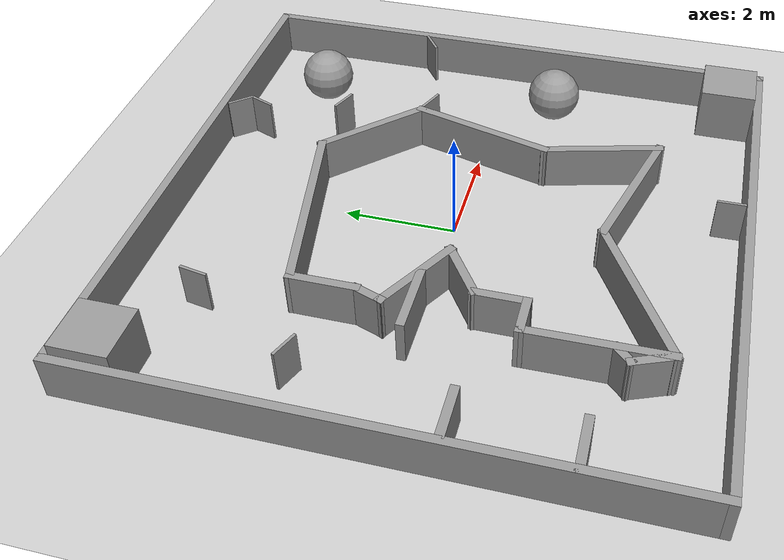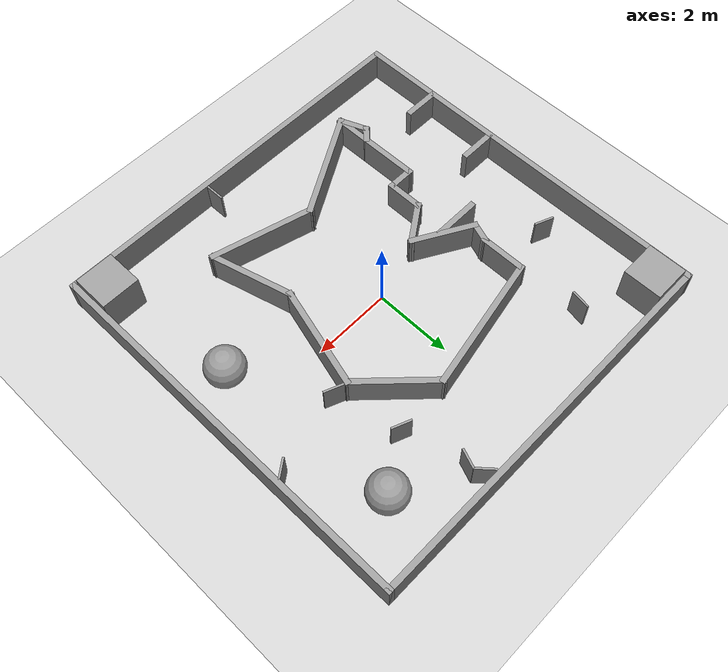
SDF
<sdf version="1.6">
 <world name="default">
  <light name="sun" type="directional">
   <pose>0 0 10 0 -0 0</pose>
   <diffuse>0.8 0.8 0.8 1</diffuse>
   <specular>0.2 0.2 0.2 1</specular>
   <attenuation>
    <range>1000</range>
    <constant>0.9</constant>
    <linear>0.01</linear>
    <quadratic>0.001</quadratic>
   </attenuation>
   <direction>-0.5 0.1 -0.9</direction>
  </light>
  <model name="ground_plane">
   <static>1</static>
   <link name="link">
    <collision name="collision">
     <geometry><plane><normal>0 0 1</normal><size>100 100</size></plane></geometry>
     <surface><friction><ode><mu>100</mu><mu2>50</mu2></ode></friction></surface>
    </collision>
    <visual name="visual">
     <cast_shadows>0</cast_shadows>
     <geometry><plane><normal>0 0 1</normal><size>100 100</size></plane></geometry>
     <material>
      <script><uri>file://media/materials/scripts/gazebo.material</uri><name>Gazebo/Grey</name></script>
     </material>
    </visual>
   </link>
  </model>
  <gravity>0 0 -9.8</gravity>
  <magnetic_field>6e-06 2.3e-05 -4.2e-05</magnetic_field>
  <atmosphere type="adiabatic"/>
  <physics name="default_physics" default="0" type="ode">
   <max_step_size>0.001</max_step_size>
   <real_time_factor>1</real_time_factor>
   <real_time_update_rate>1000</real_time_update_rate>
  </physics>
  <scene><ambient>0.4 0.4 0.4 1</ambient><background>0.7 0.7 0.7 1</background><shadows>1</shadows></scene>
  <audio><device>default</device></audio>
  <spherical_coordinates>
   <surface_model>EARTH_WGS84</surface_model>
   <latitude_deg>0</latitude_deg>
   <longitude_deg>0</longitude_deg>
   <elevation>0</elevation>
   <heading_deg>0</heading_deg>
  </spherical_coordinates>
  <model name="rsp_maze">
   <link name="Wall_1">
    <collision name="Wall_1_Collision">
     <geometry><box><size>10.15 0.15 0.8</size></box></geometry>
     <pose>0 0 0.4 0 -0 0</pose>
    </collision>
    <visual name="Wall_1_Visual">
     <pose>0 0 0.4 0 -0 0</pose>
     <geometry><box><size>10.15 0.15 0.8</size></box></geometry>
     <material>
      <script><uri>file://media/materials/scripts/gazebo.material</uri><name>Gazebo/Grey</name></script>
      <ambient>1 1 1 1</ambient>
     </material>
     <meta><layer>0</layer></meta>
    </visual>
    <pose>-5 0 0 0 -0 1.5708</pose>
   </link>
   <link name="Wall_10">
    <collision name="Wall_10_Collision">
     <geometry><box><size>1 0.15 0.8</size></box></geometry>
     <pose>0 0 0.4 0 -0 0</pose>
    </collision>
    <visual name="Wall_10_Visual">
     <pose>0 0 0.4 0 -0 0</pose>
     <geometry><box><size>1 0.15 0.8</size></box></geometry>
     <material>
      <script><uri>file://media/materials/scripts/gazebo.material</uri><name>Gazebo/Grey</name></script>
      <ambient>1 1 1 1</ambient>
     </material>
     <meta><layer>0</layer></meta>
    </visual>
    <pose>-4.573 -2.971 0 0 -0 0</pose>
   </link>
   <link name="Wall_12">
    <collision name="Wall_12_Collision">
     <geometry><box><size>2.5 0.15 0.8</size></box></geometry>
     <pose>0 0 0.4 0 -0 0</pose>
    </collision>
    <visual name="Wall_12_Visual">
     <pose>0 0 0.4 0 -0 0</pose>
     <geometry><box><size>2.5 0.15 0.8</size></box></geometry>
     <material>
      <script><uri>file://media/materials/scripts/gazebo.material</uri><name>Gazebo/Grey</name></script>
      <ambient>1 1 1 1</ambient>
     </material>
     <meta><layer>0</layer></meta>
    </visual>
    <pose>-2.722 -2.876 0 0 -0 1.58101</pose>
   </link>
   <link name="Wall_13">
    <collision name="Wall_13_Collision">
     <geometry><box><size>0.75 0.15 0.8</size></box></geometry>
     <pose>0 0 0.4 0 -0 0</pose>
    </collision>
    <visual name="Wall_13_Visual">
     <pose>0 0 0.4 0 -0 0</pose>
     <geometry><box><size>0.75 0.15 0.8</size></box></geometry>
     <material>
      <script><uri>file://media/materials/scripts/gazebo.material</uri><name>Gazebo/Grey</name></script>
      <ambient>1 1 1 1</ambient>
     </material>
     <meta><layer>0</layer></meta>
    </visual>
    <pose>-2.434 -1.701 0 0 -0 0</pose>
   </link>
   <link name="Wall_14">
    <collision name="Wall_14_Collision">
     <geometry><box><size>1 0.15 0.8</size></box></geometry>
     <pose>0 0 0.4 0 -0 0</pose>
    </collision>
    <visual name="Wall_14_Visual">
     <pose>0 0 0.4 0 -0 0</pose>
     <geometry><box><size>1 0.15 0.8</size></box></geometry>
     <material>
      <script><uri>file://media/materials/scripts/gazebo.material</uri><name>Gazebo/Grey</name></script>
      <ambient>1 1 1 1</ambient>
     </material>
     <meta><layer>0</layer></meta>
    </visual>
    <pose>-2.134 -1.276 0 0 -0 1.5708</pose>
   </link>
   <link name="Wall_15">
    <collision name="Wall_15_Collision">
     <geometry><box><size>1.18919 0.15 0.8</size></box></geometry>
     <pose>0 0 0.4 0 -0 0</pose>
    </collision>
    <visual name="Wall_15_Visual">
     <pose>0 0 0.4 0 -0 0</pose>
     <geometry><box><size>1.18919 0.15 0.8</size></box></geometry>
     <material>
      <script><uri>file://media/materials/scripts/gazebo.material</uri><name>Gazebo/Grey</name></script>
      <ambient>1 1 1 1</ambient>
     </material>
     <meta><layer>0</layer></meta>
    </visual>
    <pose>-1.707 -0.555 0 0 -0 0.606153</pose>
   </link>
   <link name="Wall_16">
    <collision name="Wall_16_Collision">
     <geometry><box><size>1.73122 0.15 0.8</size></box></geometry>
     <pose>0 0 0.4 0 -0 0</pose>
    </collision>
    <visual name="Wall_16_Visual">
     <pose>0 0 0.4 0 -0 0</pose>
     <geometry><box><size>1.73122 0.15 0.8</size></box></geometry>
     <material>
      <script><uri>file://media/materials/scripts/gazebo.material</uri><name>Gazebo/Grey</name></script>
      <ambient>1 1 1 1</ambient>
     </material>
     <meta><layer>0</layer></meta>
    </visual>
    <pose>-1.9675 0.131 0 0 -0 2.62559</pose>
   </link>
   <link name="Wall_17">
    <collision name="Wall_17_Collision">
     <geometry><box><size>0.631141 0.15 0.8</size></box></geometry>
     <pose>0 0 0.4 0 -0 0</pose>
    </collision>
    <visual name="Wall_17_Visual">
     <pose>0 0 0.4 0 -0 0</pose>
     <geometry><box><size>0.631141 0.15 0.8</size></box></geometry>
     <material>
      <script><uri>file://media/materials/scripts/gazebo.material</uri><name>Gazebo/Grey</name></script>
      <ambient>1 1 1 1</ambient>
     </material>
     <meta><layer>0</layer></meta>
    </visual>
    <pose>-2.5745 0.748 0 0 -0 1.23001</pose>
   </link>
   <link name="Wall_18">
    <collision name="Wall_18_Collision">
     <geometry><box><size>1.25 0.15 0.8</size></box></geometry>
     <pose>0 0 0.4 0 -0 0</pose>
    </collision>
    <visual name="Wall_18_Visual">
     <pose>0 0 0.4 0 -0 0</pose>
     <geometry><box><size>1.25 0.15 0.8</size></box></geometry>
     <material>
      <script><uri>file://media/materials/scripts/gazebo.material</uri><name>Gazebo/Grey</name></script>
      <ambient>1 1 1 1</ambient>
     </material>
     <meta><layer>0</layer></meta>
    </visual>
    <pose>-2.494 1.525 0 0 -0 1.5708</pose>
   </link>
   <link name="Wall_20">
    <collision name="Wall_20_Collision">
     <geometry><box><size>1.25 0.15 0.8</size></box></geometry>
     <pose>0 0 0.4 0 -0 0</pose>
    </collision>
    <visual name="Wall_20_Visual">
     <pose>0 0 0.4 0 -0 0</pose>
     <geometry><box><size>1.25 0.15 0.8</size></box></geometry>
     <material>
      <script><uri>file://media/materials/scripts/gazebo.material</uri><name>Gazebo/Grey</name></script>
      <ambient>1 1 1 1</ambient>
     </material>
     <meta><layer>0</layer></meta>
    </visual>
    <pose>-2.484 0.074 0 0 -0 3.14159</pose>
   </link>
   <link name="Wall_22">
    <collision name="Wall_22_Collision">
     <geometry><box><size>1 0.15 0.8</size></box></geometry>
     <pose>0 0 0.4 0 -0 0</pose>
    </collision>
    <visual name="Wall_22_Visual">
     <pose>0 0 0.4 0 -0 0</pose>
     <geometry><box><size>1 0.15 0.8</size></box></geometry>
     <material>
      <script><uri>file://media/materials/scripts/gazebo.material</uri><name>Gazebo/Grey</name></script>
      <ambient>1 1 1 1</ambient>
     </material>
     <meta><layer>0</layer></meta>
    </visual>
    <pose>-4.523 -1.028 0 0 -0 0</pose>
   </link>
   <link name="Wall_24">
    <collision name="Wall_24_Collision">
     <geometry><box><size>0.492019 0.15 0.8</size></box></geometry>
     <pose>0 0 0.4 0 -0 0</pose>
    </collision>
    <visual name="Wall_24_Visual">
     <pose>0 0 0.4 0 -0 0</pose>
     <geometry><box><size>0.492019 0.15 0.8</size></box></geometry>
     <material>
      <script><uri>file://media/materials/scripts/gazebo.material</uri><name>Gazebo/Grey</name></script>
      <ambient>1 1 1 1</ambient>
     </material>
     <meta><layer>0</layer></meta>
    </visual>
    <pose>-2.852 -3.287 0 0 -0 -2.33141</pose>
   </link>
   <link name="Wall_25">
    <collision name="Wall_25_Collision">
     <geometry><box><size>0.840797 0.15 0.8</size></box></geometry>
     <pose>0 0 0.4 0 -0 0</pose>
    </collision>
    <visual name="Wall_25_Visual">
     <pose>0 0 0.4 0 -0 0</pose>
     <geometry><box><size>0.840797 0.15 0.8</size></box></geometry>
     <material>
      <script><uri>file://media/materials/scripts/gazebo.material</uri><name>Gazebo/Grey</name></script>
      <ambient>1 1 1 1</ambient>
     </material>
     <meta><layer>0</layer></meta>
    </visual>
    <pose>-2.84 -3.731 0 0 -0 -1.18491</pose>
   </link>
   <link name="Wall_29">
    <collision name="Wall_29_Collision">
     <geometry><box><size>2.99985 0.15 0.8</size></box></geometry>
     <pose>0 0 0.4 0 -0 0</pose>
    </collision>
    <visual name="Wall_29_Visual">
     <pose>0 0 0.4 0 -0 0</pose>
     <geometry><box><size>2.99985 0.15 0.8</size></box></geometry>
     <material>
      <script><uri>file://media/materials/scripts/gazebo.material</uri><name>Gazebo/Grey</name></script>
      <ambient>1 1 1 1</ambient>
     </material>
     <meta><layer>0</layer></meta>
    </visual>
    <pose>-1.476 -3.3385 0 0 -0 0.523629</pose>
   </link>
   <link name="Wall_3">
    <collision name="Wall_3_Collision">
     <geometry><box><size>10.15 0.15 0.8</size></box></geometry>
     <pose>0 0 0.4 0 -0 0</pose>
    </collision>
    <visual name="Wall_3_Visual">
     <pose>0 0 0.4 0 -0 0</pose>
     <geometry><box><size>10.15 0.15 0.8</size></box></geometry>
     <material>
      <script><uri>file://media/materials/scripts/gazebo.material</uri><name>Gazebo/Grey</name></script>
      <ambient>1 1 1 1</ambient>
     </material>
     <meta><layer>0</layer></meta>
    </visual>
    <pose>0 5 0 0 -0 0</pose>
   </link>
   <link name="Wall_30">
    <collision name="Wall_30_Collision">
     <geometry><box><size>2.73804 0.15 0.8</size></box></geometry>
     <pose>0 0 0.4 0 -0 0</pose>
    </collision>
    <visual name="Wall_30_Visual">
     <pose>0 0 0.4 0 -0 0</pose>
     <geometry><box><size>2.73804 0.15 0.8</size></box></geometry>
     <material>
      <script><uri>file://media/materials/scripts/gazebo.material</uri><name>Gazebo/Grey</name></script>
      <ambient>1 1 1 1</ambient>
     </material>
     <meta><layer>0</layer></meta>
    </visual>
    <pose>1.0075 -2.9625 0 0 -0 -0.263066</pose>
   </link>
   <link name="Wall_31">
    <collision name="Wall_31_Collision">
     <geometry><box><size>2.25 0.15 0.8</size></box></geometry>
     <pose>0 0 0.4 0 -0 0</pose>
    </collision>
    <visual name="Wall_31_Visual">
     <pose>0 0 0.4 0 -0 0</pose>
     <geometry><box><size>2.25 0.15 0.8</size></box></geometry>
     <material>
      <script><uri>file://media/materials/scripts/gazebo.material</uri><name>Gazebo/Grey</name></script>
      <ambient>1 1 1 1</ambient>
     </material>
     <meta><layer>0</layer></meta>
    </visual>
    <pose>1.985 -2.2845 0 0 -0 1.83275</pose>
   </link>
   <link name="Wall_32">
    <collision name="Wall_32_Collision">
     <geometry><box><size>2.75 0.15 0.8</size></box></geometry>
     <pose>0 0 0.4 0 -0 0</pose>
    </collision>
    <visual name="Wall_32_Visual">
     <pose>0 0 0.4 0 -0 0</pose>
     <geometry><box><size>2.75 0.15 0.8</size></box></geometry>
     <material>
      <script><uri>file://media/materials/scripts/gazebo.material</uri><name>Gazebo/Grey</name></script>
      <ambient>1 1 1 1</ambient>
     </material>
     <meta><layer>0</layer></meta>
    </visual>
    <pose>2.0495 -0.0145 0 0 -0 1.30893</pose>
   </link>
   <link name="Wall_33">
    <collision name="Wall_33_Collision">
     <geometry><box><size>2.25 0.15 0.8</size></box></geometry>
     <pose>0 0 0.4 0 -0 0</pose>
    </collision>
    <visual name="Wall_33_Visual">
     <pose>0 0 0.4 0 -0 0</pose>
     <geometry><box><size>2.25 0.15 0.8</size></box></geometry>
     <material>
      <script><uri>file://media/materials/scripts/gazebo.material</uri><name>Gazebo/Grey</name></script>
      <ambient>1 1 1 1</ambient>
     </material>
     <meta><layer>0</layer></meta>
    </visual>
    <pose>1.6435 1.9835 0 0 -0 2.35619</pose>
   </link>
   <link name="Wall_34">
    <collision name="Wall_34_Collision">
     <geometry><box><size>3.60689 0.15 0.8</size></box></geometry>
     <pose>0 0 0.4 0 -0 0</pose>
    </collision>
    <visual name="Wall_34_Visual">
     <pose>0 0 0.4 0 -0 0</pose>
     <geometry><box><size>3.60689 0.15 0.8</size></box></geometry>
     <material>
      <script><uri>file://media/materials/scripts/gazebo.material</uri><name>Gazebo/Grey</name></script>
      <ambient>1 1 1 1</ambient>
     </material>
     <meta><layer>0</layer></meta>
    </visual>
    <pose>-0.7965 2.4005 0 0 -0 -2.95214</pose>
   </link>
   <link name="Wall_5">
    <collision name="Wall_5_Collision">
     <geometry><box><size>10.15 0.15 0.8</size></box></geometry>
     <pose>0 0 0.4 0 -0 0</pose>
    </collision>
    <visual name="Wall_5_Visual">
     <pose>0 0 0.4 0 -0 0</pose>
     <geometry><box><size>10.15 0.15 0.8</size></box></geometry>
     <material>
      <script><uri>file://media/materials/scripts/gazebo.material</uri><name>Gazebo/Grey</name></script>
      <ambient>1 1 1 1</ambient>
     </material>
     <meta><layer>0</layer></meta>
    </visual>
    <pose>5 0 0 0 -0 -1.5708</pose>
   </link>
   <link name="Wall_8">
    <collision name="Wall_8_Collision">
     <geometry><box><size>10.15 0.15 0.8</size></box></geometry>
     <pose>0 0 0.4 0 -0 0</pose>
    </collision>
    <visual name="Wall_8_Visual">
     <pose>0 0 0.4 0 -0 0</pose>
     <geometry><box><size>10.15 0.15 0.8</size></box></geometry>
     <material>
      <script><uri>file://media/materials/scripts/gazebo.material</uri><name>Gazebo/Grey</name></script>
      <ambient>1 1 1 1</ambient>
     </material>
     <meta><layer>0</layer></meta>
    </visual>
    <pose>0 -5 0 0 -0 0</pose>
   </link>
   <static>1</static>
  </model>
  <model name="unit_sphere">
   <pose>3.48766 3.52777 0.5 0 -0 0</pose>
   <link name="link">
    <inertial>
     <mass>1</mass>
     <inertia><ixx>0.1</ixx><ixy>0</ixy><ixz>0</ixz><iyy>0.1</iyy><iyz>0</iyz><izz>0.1</izz></inertia>
    </inertial>
    <collision name="collision"><geometry><sphere><radius>0.5</radius></sphere></geometry></collision>
    <visual name="visual">
     <geometry><sphere><radius>0.5</radius></sphere></geometry>
     <material>
      <script><name>Gazebo/Grey</name><uri>file://media/materials/scripts/gazebo.material</uri></script>
     </material>
    </visual>
   </link>
  </model>
  <model name="unit_sphere_0">
   <pose>3.90514 -1.07834 0.5 0 -0 0</pose>
   <link name="link">
    <inertial>
     <mass>1</mass>
     <inertia><ixx>0.1</ixx><ixy>0</ixy><ixz>0</ixz><iyy>0.1</iyy><iyz>0</iyz><izz>0.1</izz></inertia>
    </inertial>
    <collision name="collision"><geometry><sphere><radius>0.5</radius></sphere></geometry></collision>
    <visual name="visual">
     <geometry><sphere><radius>0.5</radius></sphere></geometry>
     <material>
      <script><name>Gazebo/Grey</name><uri>file://media/materials/scripts/gazebo.material</uri></script>
     </material>
    </visual>
   </link>
  </model>
  <model name="unit_box">
   <pose>4.42498 -4.425 0.5 0 -0 1e-06</pose>
   <link name="link">
    <inertial>
     <mass>1</mass>
     <inertia>
      <ixx>0.166667</ixx>
      <ixy>0</ixy>
      <ixz>0</ixz>
      <iyy>0.166667</iyy>
      <iyz>0</iyz>
      <izz>0.166667</izz>
     </inertia>
    </inertial>
    <collision name="collision"><geometry><box><size>1 1 1</size></box></geometry></collision>
    <visual name="visual">
     <geometry><box><size>1 1 1</size></box></geometry>
     <material>
      <script><name>Gazebo/Grey</name><uri>file://media/materials/scripts/gazebo.material</uri></script>
     </material>
    </visual>
   </link>
  </model>
  <model name="unit_box_0">
   <pose>-4.42501 4.42478 0.5 0 -0 9e-06</pose>
   <link name="link">
    <inertial>
     <mass>1</mass>
     <inertia>
      <ixx>0.166667</ixx>
      <ixy>0</ixy>
      <ixz>0</ixz>
      <iyy>0.166667</iyy>
      <iyz>0</iyz>
      <izz>0.166667</izz>
     </inertia>
    </inertial>
    <collision name="collision"><geometry><box><size>1 1 1</size></box></geometry></collision>
    <visual name="visual">
     <geometry><box><size>1 1 1</size></box></geometry>
     <material>
      <script><name>Gazebo/Grey</name><uri>file://media/materials/scripts/gazebo.material</uri></script>
     </material>
    </visual>
   </link>
  </model>
  <model name="wall">
   <link name="link">
    <inertial>
     <mass>1</mass>
     <inertia>
      <ixx>0.166667</ixx>
      <ixy>0</ixy>
      <ixz>0</ixz>
      <iyy>0.166667</iyy>
      <iyz>0</iyz>
      <izz>0.166667</izz>
     </inertia>
    </inertial>
    <visual name="visual">
     <geometry><box><size>0.05 0.5 0.8</size></box></geometry>
     <material>
      <script><name>Gazebo/Grey</name><uri>file://media/materials/scripts/gazebo.material</uri></script>
      <shader type="vertex"><normal_map>__default__</normal_map></shader>
      <ambient>0.3 0.3 0.3 1</ambient>
      <diffuse>0.7 0.7 0.7 1</diffuse>
      <specular>0.01 0.01 0.01 1</specular>
      <emissive>0 0 0 1</emissive>
     </material>
    </visual>
    <collision name="collision">
     <geometry><box><size>0.05 0.5 1</size></box></geometry>
     <surface>
      <friction>
       <ode><mu>1</mu><mu2>1</mu2><fdir1>0 0 0</fdir1><slip1>0</slip1><slip2>0</slip2></ode>
       <torsional>
        <coefficient>1</coefficient>
        <patch_radius>0</patch_radius>
        <surface_radius>0</surface_radius>
        <use_patch_radius>1</use_patch_radius>
        <ode><slip>0</slip></ode>
       </torsional>
      </friction>
      <bounce><restitution_coefficient>0</restitution_coefficient><threshold>1e+06</threshold></bounce>
      <contact>
       <collide_without_contact>0</collide_without_contact>
       <collide_without_contact_bitmask>1</collide_without_contact_bitmask>
       <collide_bitmask>1</collide_bitmask>
       <ode>
        <soft_cfm>0</soft_cfm>
        <soft_erp>0.2</soft_erp>
        <kp>1e+13</kp>
        <kd>1</kd>
        <max_vel>0.01</max_vel>
        <min_depth>0</min_depth>
       </ode>
       <bullet>
        <split_impulse>1</split_impulse>
        <split_impulse_penetration_threshold>-0.01</split_impulse_penetration_threshold>
        <soft_cfm>0</soft_cfm>
        <soft_erp>0.2</soft_erp>
        <kp>1e+13</kp>
        <kd>1</kd>
       </bullet>
      </contact>
     </surface>
    </collision>
   </link>
   <static>0</static>
   <pose>-3.88759 1.63312 0.4 0 -0 1.18614</pose>
  </model>
  <model name="wall_clone">
   <link name="link">
    <inertial>
     <mass>1</mass>
     <inertia>
      <ixx>0.166667</ixx>
      <ixy>0</ixy>
      <ixz>0</ixz>
      <iyy>0.166667</iyy>
      <iyz>0</iyz>
      <izz>0.166667</izz>
     </inertia>
    </inertial>
    <visual name="visual">
     <geometry><box><size>0.05 0.5 0.8</size></box></geometry>
     <material>
      <script><name>Gazebo/Grey</name><uri>file://media/materials/scripts/gazebo.material</uri></script>
      <shader type="vertex"><normal_map>__default__</normal_map></shader>
      <ambient>0.3 0.3 0.3 1</ambient>
      <diffuse>0.7 0.7 0.7 1</diffuse>
      <specular>0.01 0.01 0.01 1</specular>
      <emissive>0 0 0 1</emissive>
     </material>
    </visual>
    <collision name="collision">
     <geometry><box><size>0.05 0.5 1</size></box></geometry>
     <surface>
      <friction>
       <ode><mu>1</mu><mu2>1</mu2><fdir1>0 0 0</fdir1><slip1>0</slip1><slip2>0</slip2></ode>
       <torsional>
        <coefficient>1</coefficient>
        <patch_radius>0</patch_radius>
        <surface_radius>0</surface_radius>
        <use_patch_radius>1</use_patch_radius>
        <ode><slip>0</slip></ode>
       </torsional>
      </friction>
      <bounce><restitution_coefficient>0</restitution_coefficient><threshold>1e+06</threshold></bounce>
      <contact>
       <collide_without_contact>0</collide_without_contact>
       <collide_without_contact_bitmask>1</collide_without_contact_bitmask>
       <collide_bitmask>1</collide_bitmask>
       <ode>
        <soft_cfm>0</soft_cfm>
        <soft_erp>0.2</soft_erp>
        <kp>1e+13</kp>
        <kd>1</kd>
        <max_vel>0.01</max_vel>
        <min_depth>0</min_depth>
       </ode>
       <bullet>
        <split_impulse>1</split_impulse>
        <split_impulse_penetration_threshold>-0.01</split_impulse_penetration_threshold>
        <soft_cfm>0</soft_cfm>
        <soft_erp>0.2</soft_erp>
        <kp>1e+13</kp>
        <kd>1</kd>
       </bullet>
      </contact>
     </surface>
    </collision>
   </link>
   <static>0</static>
   <pose>-2.76846 3.61224 0.4 0 0 -0.16921</pose>
  </model>
  <model name="wall_clone_0">
   <link name="link">
    <inertial>
     <mass>1</mass>
     <inertia>
      <ixx>0.166667</ixx>
      <ixy>0</ixy>
      <ixz>0</ixz>
      <iyy>0.166667</iyy>
      <iyz>0</iyz>
      <izz>0.166667</izz>
     </inertia>
    </inertial>
    <visual name="visual">
     <geometry><box><size>0.05 0.5 0.8</size></box></geometry>
     <material>
      <script><name>Gazebo/Grey</name><uri>file://media/materials/scripts/gazebo.material</uri></script>
      <shader type="vertex"><normal_map>__default__</normal_map></shader>
      <ambient>0.3 0.3 0.3 1</ambient>
      <diffuse>0.7 0.7 0.7 1</diffuse>
      <specular>0.01 0.01 0.01 1</specular>
      <emissive>0 0 0 1</emissive>
     </material>
    </visual>
    <collision name="collision">
     <geometry><box><size>0.05 0.5 1</size></box></geometry>
     <surface>
      <friction>
       <ode><mu>1</mu><mu2>1</mu2><fdir1>0 0 0</fdir1><slip1>0</slip1><slip2>0</slip2></ode>
       <torsional>
        <coefficient>1</coefficient>
        <patch_radius>0</patch_radius>
        <surface_radius>0</surface_radius>
        <use_patch_radius>1</use_patch_radius>
        <ode><slip>0</slip></ode>
       </torsional>
      </friction>
      <bounce><restitution_coefficient>0</restitution_coefficient><threshold>1e+06</threshold></bounce>
      <contact>
       <collide_without_contact>0</collide_without_contact>
       <collide_without_contact_bitmask>1</collide_without_contact_bitmask>
       <collide_bitmask>1</collide_bitmask>
       <ode>
        <soft_cfm>0</soft_cfm>
        <soft_erp>0.2</soft_erp>
        <kp>1e+13</kp>
        <kd>1</kd>
        <max_vel>0.01</max_vel>
        <min_depth>0</min_depth>
       </ode>
       <bullet>
        <split_impulse>1</split_impulse>
        <split_impulse_penetration_threshold>-0.01</split_impulse_penetration_threshold>
        <soft_cfm>0</soft_cfm>
        <soft_erp>0.2</soft_erp>
        <kp>1e+13</kp>
        <kd>1</kd>
       </bullet>
      </contact>
     </surface>
    </collision>
   </link>
   <static>0</static>
   <pose>1.81329 4.71722 0.4 0 -0 0.717982</pose>
  </model>
  <model name="wall_clone_1">
   <link name="link">
    <inertial>
     <mass>1</mass>
     <inertia>
      <ixx>0.166667</ixx>
      <ixy>0</ixy>
      <ixz>0</ixz>
      <iyy>0.166667</iyy>
      <iyz>0</iyz>
      <izz>0.166667</izz>
     </inertia>
    </inertial>
    <visual name="visual">
     <geometry><box><size>0.05 0.5 0.8</size></box></geometry>
     <material>
      <script><name>Gazebo/Grey</name><uri>file://media/materials/scripts/gazebo.material</uri></script>
      <shader type="vertex"><normal_map>__default__</normal_map></shader>
      <ambient>0.3 0.3 0.3 1</ambient>
      <diffuse>0.7 0.7 0.7 1</diffuse>
      <specular>0.01 0.01 0.01 1</specular>
      <emissive>0 0 0 1</emissive>
     </material>
    </visual>
    <collision name="collision">
     <geometry><box><size>0.05 0.5 1</size></box></geometry>
     <surface>
      <friction>
       <ode><mu>1</mu><mu2>1</mu2><fdir1>0 0 0</fdir1><slip1>0</slip1><slip2>0</slip2></ode>
       <torsional>
        <coefficient>1</coefficient>
        <patch_radius>0</patch_radius>
        <surface_radius>0</surface_radius>
        <use_patch_radius>1</use_patch_radius>
        <ode><slip>0</slip></ode>
       </torsional>
      </friction>
      <bounce><restitution_coefficient>0</restitution_coefficient><threshold>1e+06</threshold></bounce>
      <contact>
       <collide_without_contact>0</collide_without_contact>
       <collide_without_contact_bitmask>1</collide_without_contact_bitmask>
       <collide_bitmask>1</collide_bitmask>
       <ode>
        <soft_cfm>0</soft_cfm>
        <soft_erp>0.2</soft_erp>
        <kp>1e+13</kp>
        <kd>1</kd>
        <max_vel>0.01</max_vel>
        <min_depth>0</min_depth>
       </ode>
       <bullet>
        <split_impulse>1</split_impulse>
        <split_impulse_penetration_threshold>-0.01</split_impulse_penetration_threshold>
        <soft_cfm>0</soft_cfm>
        <soft_erp>0.2</soft_erp>
        <kp>1e+13</kp>
        <kd>1</kd>
       </bullet>
      </contact>
     </surface>
    </collision>
   </link>
   <static>0</static>
   <pose>1.89447 4.3184 0.4 0 -0 2.77506</pose>
  </model>
  <model name="wall_clone_2">
   <link name="link">
    <inertial>
     <mass>1</mass>
     <inertia>
      <ixx>0.166667</ixx>
      <ixy>0</ixy>
      <ixz>0</ixz>
      <iyy>0.166667</iyy>
      <iyz>0</iyz>
      <izz>0.166667</izz>
     </inertia>
    </inertial>
    <visual name="visual">
     <geometry><box><size>0.05 0.5 0.8</size></box></geometry>
     <material>
      <script><name>Gazebo/Grey</name><uri>file://media/materials/scripts/gazebo.material</uri></script>
      <shader type="vertex"><normal_map>__default__</normal_map></shader>
      <ambient>0.3 0.3 0.3 1</ambient>
      <diffuse>0.7 0.7 0.7 1</diffuse>
      <specular>0.01 0.01 0.01 1</specular>
      <emissive>0 0 0 1</emissive>
     </material>
    </visual>
    <collision name="collision">
     <geometry><box><size>0.05 0.5 1</size></box></geometry>
     <surface>
      <friction>
       <ode><mu>1</mu><mu2>1</mu2><fdir1>0 0 0</fdir1><slip1>0</slip1><slip2>0</slip2></ode>
       <torsional>
        <coefficient>1</coefficient>
        <patch_radius>0</patch_radius>
        <surface_radius>0</surface_radius>
        <use_patch_radius>1</use_patch_radius>
        <ode><slip>0</slip></ode>
       </torsional>
      </friction>
      <bounce><restitution_coefficient>0</restitution_coefficient><threshold>1e+06</threshold></bounce>
      <contact>
       <collide_without_contact>0</collide_without_contact>
       <collide_without_contact_bitmask>1</collide_without_contact_bitmask>
       <collide_bitmask>1</collide_bitmask>
       <ode>
        <soft_cfm>0</soft_cfm>
        <soft_erp>0.2</soft_erp>
        <kp>1e+13</kp>
        <kd>1</kd>
        <max_vel>0.01</max_vel>
        <min_depth>0</min_depth>
       </ode>
       <bullet>
        <split_impulse>1</split_impulse>
        <split_impulse_penetration_threshold>-0.01</split_impulse_penetration_threshold>
        <soft_cfm>0</soft_cfm>
        <soft_erp>0.2</soft_erp>
        <kp>1e+13</kp>
        <kd>1</kd>
       </bullet>
      </contact>
     </surface>
    </collision>
   </link>
   <static>0</static>
   <pose>4.74158 1.65869 0.4 0 -0 2.20091</pose>
  </model>
  <model name="wall_clone_3">
   <link name="link">
    <inertial>
     <mass>1</mass>
     <inertia>
      <ixx>0.166667</ixx>
      <ixy>0</ixy>
      <ixz>0</ixz>
      <iyy>0.166667</iyy>
      <iyz>0</iyz>
      <izz>0.166667</izz>
     </inertia>
    </inertial>
    <visual name="visual">
     <geometry><box><size>0.05 0.5 0.8</size></box></geometry>
     <material>
      <script><name>Gazebo/Grey</name><uri>file://media/materials/scripts/gazebo.material</uri></script>
      <shader type="vertex"><normal_map>__default__</normal_map></shader>
      <ambient>0.3 0.3 0.3 1</ambient>
      <diffuse>0.7 0.7 0.7 1</diffuse>
      <specular>0.01 0.01 0.01 1</specular>
      <emissive>0 0 0 1</emissive>
     </material>
    </visual>
    <collision name="collision">
     <geometry><box><size>0.05 0.5 1</size></box></geometry>
     <surface>
      <friction>
       <ode><mu>1</mu><mu2>1</mu2><fdir1>0 0 0</fdir1><slip1>0</slip1><slip2>0</slip2></ode>
       <torsional>
        <coefficient>1</coefficient>
        <patch_radius>0</patch_radius>
        <surface_radius>0</surface_radius>
        <use_patch_radius>1</use_patch_radius>
        <ode><slip>0</slip></ode>
       </torsional>
      </friction>
      <bounce><restitution_coefficient>0</restitution_coefficient><threshold>1e+06</threshold></bounce>
      <contact>
       <collide_without_contact>0</collide_without_contact>
       <collide_without_contact_bitmask>1</collide_without_contact_bitmask>
       <collide_bitmask>1</collide_bitmask>
       <ode>
        <soft_cfm>0</soft_cfm>
        <soft_erp>0.2</soft_erp>
        <kp>1e+13</kp>
        <kd>1</kd>
        <max_vel>0.01</max_vel>
        <min_depth>0</min_depth>
       </ode>
       <bullet>
        <split_impulse>1</split_impulse>
        <split_impulse_penetration_threshold>-0.01</split_impulse_penetration_threshold>
        <soft_cfm>0</soft_cfm>
        <soft_erp>0.2</soft_erp>
        <kp>1e+13</kp>
        <kd>1</kd>
       </bullet>
      </contact>
     </surface>
    </collision>
   </link>
   <static>0</static>
   <pose>2.69705 1.14161 0.4 0 -0 1.18614</pose>
  </model>
  <model name="wall_clone_4">
   <link name="link">
    <inertial>
     <mass>1</mass>
     <inertia>
      <ixx>0.166667</ixx>
      <ixy>0</ixy>
      <ixz>0</ixz>
      <iyy>0.166667</iyy>
      <iyz>0</iyz>
      <izz>0.166667</izz>
     </inertia>
    </inertial>
    <visual name="visual">
     <geometry><box><size>0.05 0.5 0.8</size></box></geometry>
     <material>
      <script><name>Gazebo/Grey</name><uri>file://media/materials/scripts/gazebo.material</uri></script>
      <shader type="vertex"><normal_map>__default__</normal_map></shader>
      <ambient>0.3 0.3 0.3 1</ambient>
      <diffuse>0.7 0.7 0.7 1</diffuse>
      <specular>0.01 0.01 0.01 1</specular>
      <emissive>0 0 0 1</emissive>
     </material>
    </visual>
    <collision name="collision">
     <geometry><box><size>0.05 0.5 1</size></box></geometry>
     <surface>
      <friction>
       <ode><mu>1</mu><mu2>1</mu2><fdir1>0 0 0</fdir1><slip1>0</slip1><slip2>0</slip2></ode>
       <torsional>
        <coefficient>1</coefficient>
        <patch_radius>0</patch_radius>
        <surface_radius>0</surface_radius>
        <use_patch_radius>1</use_patch_radius>
        <ode><slip>0</slip></ode>
       </torsional>
      </friction>
      <bounce><restitution_coefficient>0</restitution_coefficient><threshold>1e+06</threshold></bounce>
      <contact>
       <collide_without_contact>0</collide_without_contact>
       <collide_without_contact_bitmask>1</collide_without_contact_bitmask>
       <collide_bitmask>1</collide_bitmask>
       <ode>
        <soft_cfm>0</soft_cfm>
        <soft_erp>0.2</soft_erp>
        <kp>1e+13</kp>
        <kd>1</kd>
        <max_vel>0.01</max_vel>
        <min_depth>0</min_depth>
       </ode>
       <bullet>
        <split_impulse>1</split_impulse>
        <split_impulse_penetration_threshold>-0.01</split_impulse_penetration_threshold>
        <soft_cfm>0</soft_cfm>
        <soft_erp>0.2</soft_erp>
        <kp>1e+13</kp>
        <kd>1</kd>
       </bullet>
      </contact>
     </surface>
    </collision>
   </link>
   <static>0</static>
   <pose>1.00061 -4.66509 0.4 0 -0 0.014039</pose>
  </model>
  <model name="wall_clone_5">
   <link name="link">
    <inertial>
     <mass>1</mass>
     <inertia>
      <ixx>0.166667</ixx>
      <ixy>0</ixy>
      <ixz>0</ixz>
      <iyy>0.166667</iyy>
      <iyz>0</iyz>
      <izz>0.166667</izz>
     </inertia>
    </inertial>
    <visual name="visual">
     <geometry><box><size>0.05 0.5 0.8</size></box></geometry>
     <material>
      <script><name>Gazebo/Grey</name><uri>file://media/materials/scripts/gazebo.material</uri></script>
      <shader type="vertex"><normal_map>__default__</normal_map></shader>
      <ambient>0.3 0.3 0.3 1</ambient>
      <diffuse>0.7 0.7 0.7 1</diffuse>
      <specular>0.01 0.01 0.01 1</specular>
      <emissive>0 0 0 1</emissive>
     </material>
    </visual>
    <collision name="collision">
     <geometry><box><size>0.05 0.5 1</size></box></geometry>
     <surface>
      <friction>
       <ode><mu>1</mu><mu2>1</mu2><fdir1>0 0 0</fdir1><slip1>0</slip1><slip2>0</slip2></ode>
       <torsional>
        <coefficient>1</coefficient>
        <patch_radius>0</patch_radius>
        <surface_radius>0</surface_radius>
        <use_patch_radius>1</use_patch_radius>
        <ode><slip>0</slip></ode>
       </torsional>
      </friction>
      <bounce><restitution_coefficient>0</restitution_coefficient><threshold>1e+06</threshold></bounce>
      <contact>
       <collide_without_contact>0</collide_without_contact>
       <collide_without_contact_bitmask>1</collide_without_contact_bitmask>
       <collide_bitmask>1</collide_bitmask>
       <ode>
        <soft_cfm>0</soft_cfm>
        <soft_erp>0.2</soft_erp>
        <kp>1e+13</kp>
        <kd>1</kd>
        <max_vel>0.01</max_vel>
        <min_depth>0</min_depth>
       </ode>
       <bullet>
        <split_impulse>1</split_impulse>
        <split_impulse_penetration_threshold>-0.01</split_impulse_penetration_threshold>
        <soft_cfm>0</soft_cfm>
        <soft_erp>0.2</soft_erp>
        <kp>1e+13</kp>
        <kd>1</kd>
       </bullet>
      </contact>
     </surface>
    </collision>
   </link>
   <static>0</static>
   <pose>2.29476 2.78038 0.4 0 -0 1.18614</pose>
  </model>
 </world>
</sdf>
